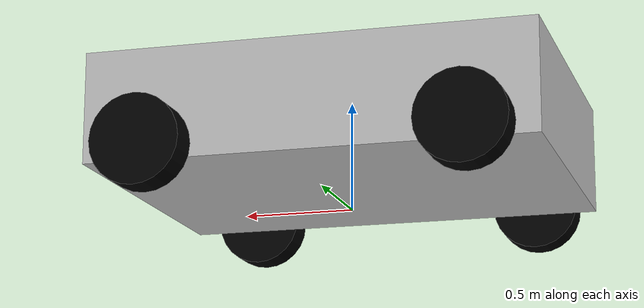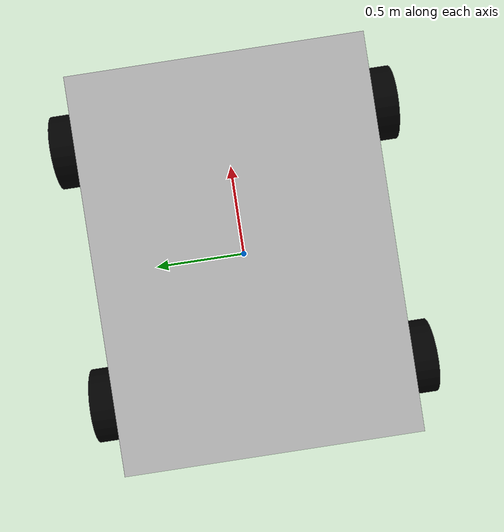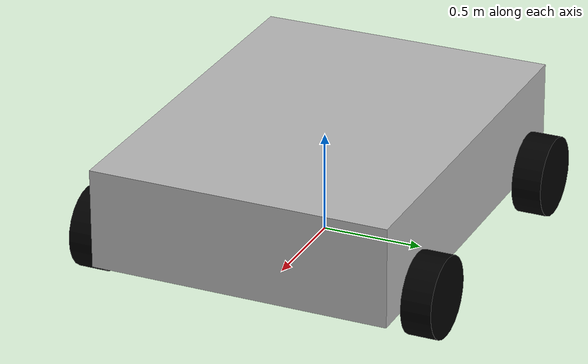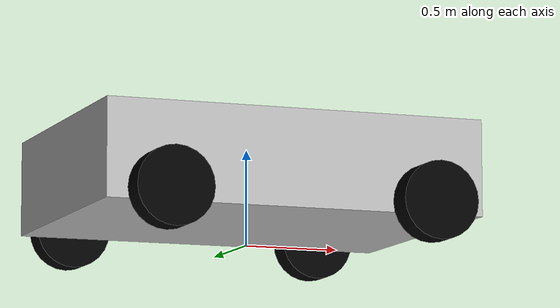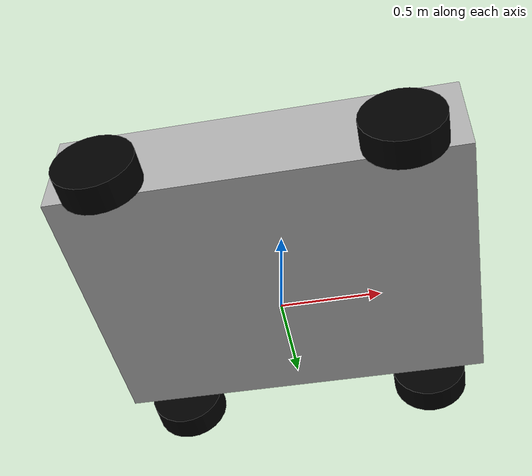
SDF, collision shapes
<?xml version="1.0" ?>
<sdf version="1.9">
  <model name="mars_curiosity_rover">
    <static>false</static>
    <self_collide>false</self_collide>

    <!-- Base Link - Main body of the rover -->
    <link name="base_link">
      <pose>0 0 0.35 0 0 0</pose>

      <inertial>
        <mass>100.0</mass>
        <inertia>
          <ixx>10.0</ixx>
          <ixy>0</ixy>
          <ixz>0</ixz>
          <iyy>15.0</iyy>
          <iyz>0</iyz>
          <izz>10.0</izz>
        </inertia>
      </inertial>

      <collision name="collision">
        <geometry>
          <box>
            <size>2.0 1.5 0.5</size>
          </box>
        </geometry>
      </collision>

      <visual name="visual">
        <pose>0 0 -0.35 0 0 1.5708</pose>
        <geometry>
          <mesh>
            <uri>model://MarsRover/mars_rover.dae</uri>
            <scale>1 1 1</scale>
          </mesh>
        </geometry>
      </visual>

      <!-- 3D GPU LiDAR - 32-channel, 10 Hz, 120m range -->
      <!-- Velodyne VLP-32C style sensor for lunar terrain navigation -->
      <sensor name="gpu_lidar" type="gpu_lidar">
        <pose>0 0 0.6 0 0 0</pose>
        <topic>lidar</topic>
        <update_rate>10</update_rate>
        <always_on>true</always_on>
        <visualize>true</visualize>
        <lidar>
          <scan>
            <horizontal>
              <samples>2048</samples>
              <resolution>1</resolution>
              <min_angle>-3.14159</min_angle>
              <max_angle>3.14159</max_angle>
            </horizontal>
            <vertical>
              <samples>32</samples>
              <resolution>1</resolution>
              <min_angle>-0.4363</min_angle>
              <max_angle>0.4363</max_angle>
            </vertical>
          </scan>
          <range>
            <min>0.05</min>
            <max>120.0</max>
            <resolution>0.01</resolution>
          </range>
          <noise>
            <type>gaussian</type>
            <mean>0.0</mean>
            <stddev>0.02</stddev>
          </noise>
        </lidar>
      </sensor>
    </link>

    <!-- Left Front Wheel -->
    <link name="left_front_wheel">
      <pose>0.7 0.85 0.15 -1.5707963 0 0</pose>
      <inertial>
        <mass>5.0</mass>
        <inertia>
          <ixx>0.1</ixx><ixy>0</ixy><ixz>0</ixz>
          <iyy>0.1</iyy><iyz>0</iyz>
          <izz>0.15</izz>
        </inertia>
      </inertial>
      <collision name="collision">
        <geometry>
          <cylinder><radius>0.2</radius><length>0.15</length></cylinder>
        </geometry>
        <surface>
          <friction><ode><mu>1.2</mu><mu2>1.2</mu2></ode></friction>
        </surface>
      </collision>
      <visual name="visual">
        <geometry>
          <cylinder><radius>0.2</radius><length>0.15</length></cylinder>
        </geometry>
        <material><ambient>0 0 0 0</ambient><diffuse>0 0 0 0</diffuse></material>
      </visual>
    </link>
    <joint name="left_front_wheel_joint" type="revolute">
      <parent>base_link</parent>
      <child>left_front_wheel</child>
      <axis>
        <xyz>0 0 1</xyz>
        <limit><effort>100</effort><velocity>10</velocity></limit>
      </axis>
    </joint>

    <!-- Right Front Wheel -->
    <link name="right_front_wheel">
      <pose>0.7 -0.85 0.15 -1.5707963 0 0</pose>
      <inertial>
        <mass>5.0</mass>
        <inertia>
          <ixx>0.1</ixx><ixy>0</ixy><ixz>0</ixz>
          <iyy>0.1</iyy><iyz>0</iyz>
          <izz>0.15</izz>
        </inertia>
      </inertial>
      <collision name="collision">
        <geometry>
          <cylinder><radius>0.2</radius><length>0.15</length></cylinder>
        </geometry>
        <surface>
          <friction><ode><mu>1.2</mu><mu2>1.2</mu2></ode></friction>
        </surface>
      </collision>
      <visual name="visual">
        <geometry>
          <cylinder><radius>0.2</radius><length>0.15</length></cylinder>
        </geometry>
        <material><ambient>0 0 0 0</ambient><diffuse>0 0 0 0</diffuse></material>
      </visual>
    </link>
    <joint name="right_front_wheel_joint" type="revolute">
      <parent>base_link</parent>
      <child>right_front_wheel</child>
      <axis>
        <xyz>0 0 1</xyz>
        <limit><effort>100</effort><velocity>10</velocity></limit>
      </axis>
    </joint>

    <!-- Left Rear Wheel -->
    <link name="left_rear_wheel">
      <pose>-0.7 0.85 0.15 -1.5707963 0 0</pose>
      <inertial>
        <mass>5.0</mass>
        <inertia>
          <ixx>0.1</ixx><ixy>0</ixy><ixz>0</ixz>
          <iyy>0.1</iyy><iyz>0</iyz>
          <izz>0.15</izz>
        </inertia>
      </inertial>
      <collision name="collision">
        <geometry>
          <cylinder><radius>0.2</radius><length>0.15</length></cylinder>
        </geometry>
        <surface>
          <friction><ode><mu>1.2</mu><mu2>1.2</mu2></ode></friction>
        </surface>
      </collision>
      <visual name="visual">
        <geometry>
          <cylinder><radius>0.2</radius><length>0.15</length></cylinder>
        </geometry>
        <material><ambient>0 0 0 0</ambient><diffuse>0 0 0 0</diffuse></material>
      </visual>
    </link>
    <joint name="left_rear_wheel_joint" type="revolute">
      <parent>base_link</parent>
      <child>left_rear_wheel</child>
      <axis>
        <xyz>0 0 1</xyz>
        <limit><effort>100</effort><velocity>10</velocity></limit>
      </axis>
    </joint>

    <!-- Right Rear Wheel -->
    <link name="right_rear_wheel">
      <pose>-0.7 -0.85 0.15 -1.5707963 0 0</pose>
      <inertial>
        <mass>5.0</mass>
        <inertia>
          <ixx>0.1</ixx><ixy>0</ixy><ixz>0</ixz>
          <iyy>0.1</iyy><iyz>0</iyz>
          <izz>0.15</izz>
        </inertia>
      </inertial>
      <collision name="collision">
        <geometry>
          <cylinder><radius>0.2</radius><length>0.15</length></cylinder>
        </geometry>
        <surface>
          <friction><ode><mu>1.2</mu><mu2>1.2</mu2></ode></friction>
        </surface>
      </collision>
      <visual name="visual">
        <geometry>
          <cylinder><radius>0.2</radius><length>0.15</length></cylinder>
        </geometry>
        <material><ambient>0 0 0 0</ambient><diffuse>0 0 0 0</diffuse></material>
      </visual>
    </link>
    <joint name="right_rear_wheel_joint" type="revolute">
      <parent>base_link</parent>
      <child>right_rear_wheel</child>
      <axis>
        <xyz>0 0 1</xyz>
        <limit><effort>100</effort><velocity>10</velocity></limit>
      </axis>
    </joint>

    <!-- Differential Drive Plugin -->
    <plugin filename="ignition-gazebo-diff-drive-system"
            name="ignition::gazebo::systems::DiffDrive">
      <left_joint>left_front_wheel_joint</left_joint>
      <left_joint>left_rear_wheel_joint</left_joint>
      <right_joint>right_front_wheel_joint</right_joint>
      <right_joint>right_rear_wheel_joint</right_joint>
      <wheel_separation>1.7</wheel_separation>
      <wheel_radius>0.2</wheel_radius>
      <odom_publish_frequency>10</odom_publish_frequency>
      <topic>/cmd_vel</topic>
      <odom_topic>/odom</odom_topic>
      <tf_topic>/tf</tf_topic>
      <frame_id>odom</frame_id>
      <child_frame_id>base_link</child_frame_id>
    </plugin>

  </model>
</sdf>
